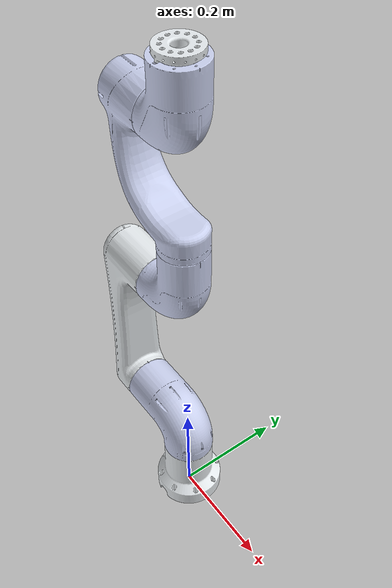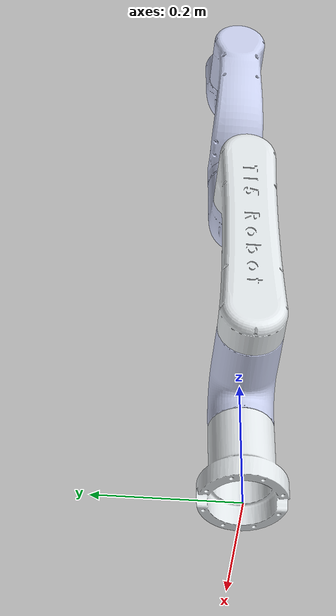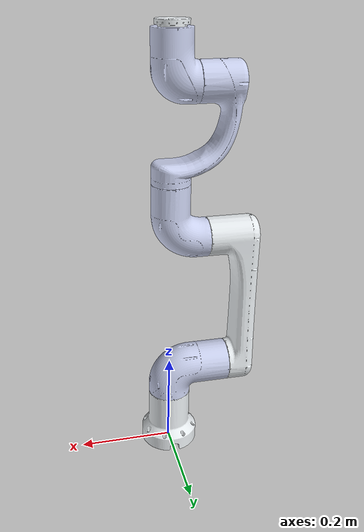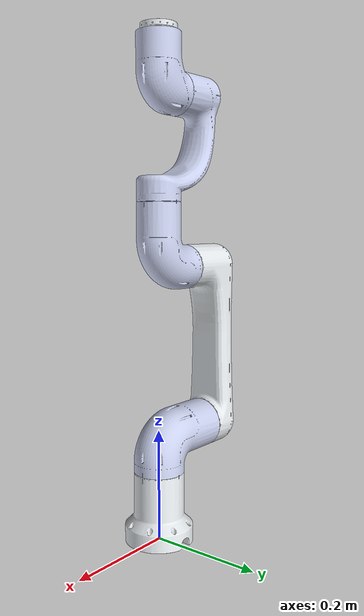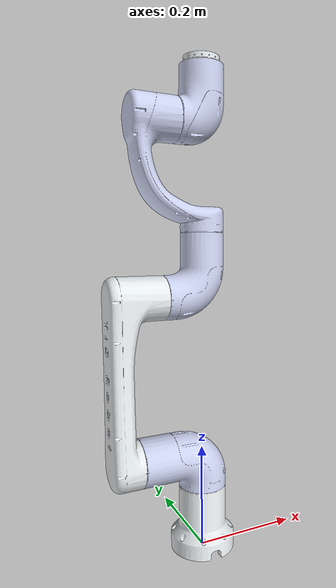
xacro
<?xml version="1.0"?>
<robot xmlns:xacro="http://www.ros.org/wiki/xacro" name="ti5_urdf">
    <xacro:arg name="initial_positions_file" default="initial_positions.yaml" />

    <!-- Import ti5_urdf urdf file -->
    <xacro:include filename="$(find ti5_urdf)/urdf/arm3.urdf" />

    <!-- Import control_xacro -->
    <xacro:include filename="ti5_urdf.ros2_control.xacro" />

    <xacro:ti5_urdf_ros2_control name="FakeSystem" initial_positions_file="$(arg initial_positions_file)"/>

</robot>

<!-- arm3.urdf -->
<robot
  name="ti5_urdf">
  <link
    name="base_link">
    <inertial>
      <origin
        xyz="-9.79424593313345E-06 -1.585955657668E-07 0.0489234030702085"
        rpy="0 0 0" />
      <mass
        value="0.804132326407685" />
      <inertia
        ixx="0.00208344333564978"
        ixy="1.18558125536883E-09"
        ixz="5.74696984729546E-07"
        iyy="0.00215790750330381"
        iyz="3.91108221651984E-09"
        izz="0.00189424843776922" />
    </inertial>
    <visual>
      <origin
        xyz="0 0 0"
        rpy="0 0 0" />
      <geometry>
        <mesh
          filename="package://ti5_urdf/meshes/arm3/base_link.STL" />
      </geometry>
      <material
        name="">
        <color
          rgba="0.898039215686275 0.917647058823529 0.929411764705882 1" />
      </material>
    </visual>
    <collision>
      <origin
        xyz="0 0 0"
        rpy="0 0 0" />
      <geometry>
        <mesh
          filename="package://ti5_urdf/meshes/arm3/base_link.STL" />
      </geometry>
    </collision>
  </link>
  <link
    name="A_Link">
    <inertial>
      <origin
        xyz="-0.0489008596868101 1.11612938793922E-06 0.0463358566053683"
        rpy="0 0 0" />
      <mass
        value="0.610762503342567" />
      <inertia
        ixx="0.00114147247329587"
        ixy="5.06610157576292E-08"
        ixz="0.000594506347228851"
        iyy="0.00188787363342557"
        iyz="-1.78802582128474E-09"
        izz="0.00179154452662575" />
    </inertial>
    <visual>
      <origin
        xyz="0 0 0"
        rpy="0 0 0" />
      <geometry>
        <mesh
          filename="package://ti5_urdf/meshes/arm3/A_Link.STL" />
      </geometry>
      <material
        name="">
        <color
          rgba="0.792156862745098 0.819607843137255 0.933333333333333 1" />
      </material>
    </visual>
    <collision>
      <origin
        xyz="0 0 0"
        rpy="0 0 0" />
      <geometry>
        <mesh
          filename="package://ti5_urdf/meshes/arm3/A_Link.STL" />
      </geometry>
    </collision>
  </link>
  <joint
    name="A"
    type="revolute">
    <origin
      xyz="0 0 0.126"
      rpy="0 0 0" />
    <parent
      link="base_link" />
    <child
      link="A_Link" />
    <axis
      xyz="0 0 -1" />
    <limit
      lower="-3.16"
      upper="3.16"
      effort="0"
      velocity="0" />
  </joint>
  <link
    name="B_Link">
    <inertial>
      <origin
        xyz="-0.0148174543621407 -7.32844793930168E-07 0.163674093761747"
        rpy="0 0 0" />
      <mass
        value="1.01613483164023" />
      <inertia
        ixx="0.0150679500066006"
        ixy="-4.4816327486528E-09"
        ixz="-0.00102504390856525"
        iyy="0.014770883335043"
        iyz="-1.82516394777523E-07"
        izz="0.00115753465608845" />
    </inertial>
    <visual>
      <origin
        xyz="0 0 0"
        rpy="0 0 0" />
      <geometry>
        <mesh
          filename="package://ti5_urdf/meshes/arm3/B_Link.STL" />
      </geometry>
      <material
        name="">
        <color
          rgba="0.898039215686275 0.917647058823529 0.929411764705882 1" />
      </material>
    </visual>
    <collision>
      <origin
        xyz="0 0 0"
        rpy="0 0 0" />
      <geometry>
        <mesh
          filename="package://ti5_urdf/meshes/arm3/B_Link.STL" />
      </geometry>
    </collision>
  </link>
  <joint
    name="B"
    type="revolute">
    <origin
      xyz="-0.126 0 0.064"
      rpy="0 0 0" />
    <parent
      link="A_Link" />
    <child
      link="B_Link" />
    <axis
      xyz="1 0 0" />
    <limit
      lower="-1.9"
      upper="1.9"
      effort="0"
      velocity="0" />
  </joint>
  <link
    name="C_Link">
    <inertial>
      <origin
        xyz="0.0525172381530465 -6.40515808356063E-07 0.0357525410320489"
        rpy="0 0 0" />
      <mass
        value="0.207878829794794" />
      <inertia
        ixx="0.000453317419670722"
        ixy="-7.59755901152063E-08"
        ixz="-0.000198039237717296"
        iyy="0.000537145689525471"
        iyz="2.48179360794005E-09"
        izz="0.000355868230184589" />
    </inertial>
    <visual>
      <origin
        xyz="0 0 0"
        rpy="0 0 0" />
      <geometry>
        <mesh
          filename="package://ti5_urdf/meshes/arm3/C_Link.STL" />
      </geometry>
      <material
        name="">
        <color
          rgba="0.792156862745098 0.819607843137255 0.933333333333333 1" />
      </material>
    </visual>
    <collision>
      <origin
        xyz="0 0 0"
        rpy="0 0 0" />
      <geometry>
        <mesh
          filename="package://ti5_urdf/meshes/arm3/C_Link.STL" />
      </geometry>
    </collision>
  </link>
  <joint
    name="C"
    type="revolute">
    <origin
      xyz="0.051 0 0.3"
      rpy="0 0 0" />
    <parent
      link="B_Link" />
    <child
      link="C_Link" />
    <axis
      xyz="-1 0 0" />
    <limit
      lower="-2.86"
      upper="2.86"
      effort="0"
      velocity="0" />
  </joint>
  <link
    name="D_Link">
    <inertial>
      <origin
        xyz="-0.0576191157563622 2.43715994806255E-05 0.0843683613129461"
        rpy="0 0 0" />
      <mass
        value="0.94571879177376" />
      <inertia
        ixx="0.00414477030324942"
        ixy="-2.77134320032314E-07"
        ixz="0.00138044790034346"
        iyy="0.0049787768272479"
        iyz="1.1299462726495E-06"
        izz="0.0017840358294831" />
    </inertial>
    <visual>
      <origin
        xyz="0 0 0"
        rpy="0 0 0" />
      <geometry>
        <mesh
          filename="package://ti5_urdf/meshes/arm3/D_Link.STL" />
      </geometry>
      <material
        name="">
        <color
          rgba="0.792156862745098 0.819607843137255 0.933333333333333 1" />
      </material>
    </visual>
    <collision>
      <origin
        xyz="0 0 0"
        rpy="0 0 0" />
      <geometry>
        <mesh
          filename="package://ti5_urdf/meshes/arm3/D_Link.STL" />
      </geometry>
    </collision>
  </link>
  <joint
    name="D"
    type="revolute">
    <origin
      xyz="0.075 0 0.116"
      rpy="0 0 0" />
    <parent
      link="C_Link" />
    <child
      link="D_Link" />
    <axis
      xyz="0 0 1" />
    <limit
      lower="-3.14"
      upper="3.14"
      effort="0"
      velocity="0" />
  </joint>
  <link
    name="E_Link">
    <inertial>
      <origin
        xyz="0.0378598160761921 -0.0307530160085382 -4.21029879971169E-06"
        rpy="0 0 0" />
      <mass
        value="0.156943200024781" />
      <inertia
        ixx="0.000278323597354339"
        ixy="8.60055845798391E-05"
        ixz="1.94162832921587E-08"
        iyy="0.000202881857355078"
        iyz="-1.27291248900308E-08"
        izz="0.000282189661463822" />
    </inertial>
    <visual>
      <origin
        xyz="0 0 0"
        rpy="0 0 0" />
      <geometry>
        <mesh
          filename="package://ti5_urdf/meshes/arm3/E_Link.STL" />
      </geometry>
      <material
        name="">
        <color
          rgba="0.792156862745098 0.819607843137255 0.933333333333333 1" />
      </material>
    </visual>
    <collision>
      <origin
        xyz="0 0 0"
        rpy="0 0 0" />
      <geometry>
        <mesh
          filename="package://ti5_urdf/meshes/arm3/E_Link.STL" />
      </geometry>
    </collision>
  </link>
  <joint
    name="E"
    type="revolute">
    <origin
      xyz="-0.049 0 0.189"
      rpy="-1.5708 0 0" />
    <parent
      link="D_Link" />
    <child
      link="E_Link" />
    <axis
      xyz="-1 0 0" />
    <limit
      lower="-3.14"
      upper="3.14"
      effort="0"
      velocity="0" />
  </joint>
  <link
    name="F_Link">
    <inertial>
      <origin
        xyz="-6.68543036141469E-11 0.00611552287926212 -0.00010310644248579"
        rpy="0 0 0" />
      <mass
        value="0.0834496515997102" />
      <inertia
        ixx="2.34250403399503E-05"
        ixy="3.2110899735671E-14"
        ixz="-1.38252176337189E-13"
        iyy="4.4477421647326E-05"
        iyz="4.41463010684962E-08"
        izz="2.31770375051733E-05" />
    </inertial>
    <visual>
      <origin
        xyz="0 0 0"
        rpy="0 0 0" />
      <geometry>
        <mesh
          filename="package://ti5_urdf/meshes/arm3/F_Link.STL" />
      </geometry>
      <material
        name="">
        <color
          rgba="0.898039215686275 0.917647058823529 0.929411764705882 1" />
      </material>
    </visual>
    <collision>
      <origin
        xyz="0 0 0"
        rpy="0 0 0" />
      <geometry>
        <mesh
          filename="package://ti5_urdf/meshes/arm3/F_Link.STL" />
      </geometry>
    </collision>
  </link>
  <joint
    name="F"
    type="revolute">
    <origin
      xyz="0.049 -0.108 0"
      rpy="0 0 0" />
    <parent
      link="E_Link" />
    <child
      link="F_Link" />
    <axis
      xyz="0 1 0" />
    <limit
      lower="-3.14"
      upper="3.14"
      effort="0"
      velocity="0" />
  </joint>

  </robot>
